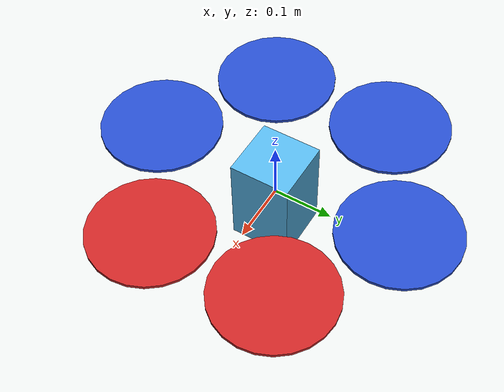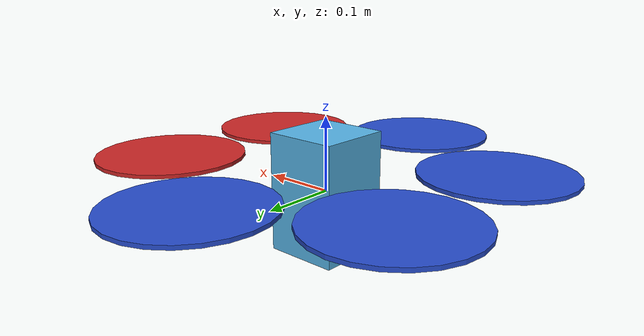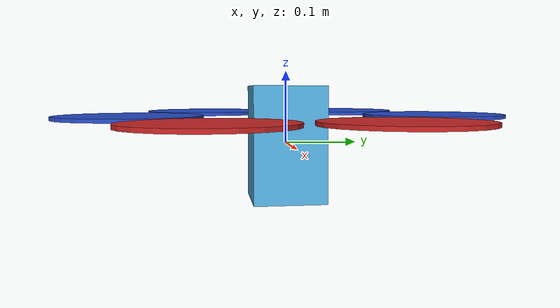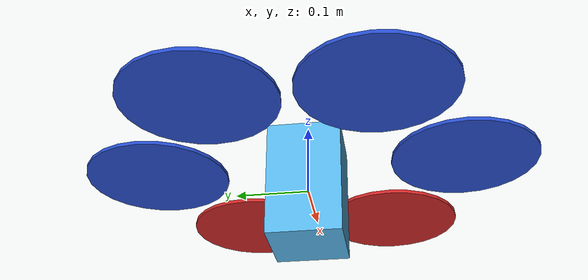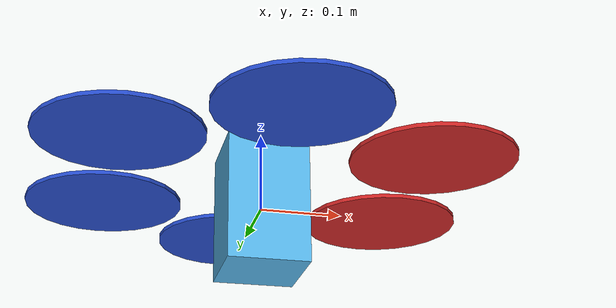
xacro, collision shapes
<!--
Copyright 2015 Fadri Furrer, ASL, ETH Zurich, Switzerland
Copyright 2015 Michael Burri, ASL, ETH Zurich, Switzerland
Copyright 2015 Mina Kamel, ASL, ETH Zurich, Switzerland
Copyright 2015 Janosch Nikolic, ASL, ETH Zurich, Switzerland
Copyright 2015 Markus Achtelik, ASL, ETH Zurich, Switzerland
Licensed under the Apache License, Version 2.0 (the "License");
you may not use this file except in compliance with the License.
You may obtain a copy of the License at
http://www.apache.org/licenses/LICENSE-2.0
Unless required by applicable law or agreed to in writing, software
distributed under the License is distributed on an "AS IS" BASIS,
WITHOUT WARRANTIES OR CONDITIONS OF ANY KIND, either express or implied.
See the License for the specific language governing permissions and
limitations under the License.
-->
<?xml version="1.0"?>

<robot name="firefly" xmlns:xacro="http://ros.org/wiki/xacro">
  <!-- Properties -->
  <xacro:property name="namespace" value="firefly" />
  <xacro:property name="rotor_velocity_slowdown_sim" value="10" />
  <xacro:property name="use_mesh_file" value="true" />
  <xacro:property name="mesh_file" value="package://rotors_description/meshes/firefly.dae" />
  <xacro:property name="mass" value="1.5" /> <!-- [kg] -->
  <xacro:property name="body_width" value="0.1" />
  <xacro:property name="body_height" value="0.16" />
  <xacro:property name="mass_rotor" value="0.005" /> <!-- [kg] -->
  <xacro:property name="arm_length" value="0.215" />
  <xacro:property name="rotor_offset_top" value="0.037" />
  <xacro:property name="radius_rotor" value="0.1" />
  <xacro:property name="motor_constant" value="8.54858e-06" /> <!-- [kg m/s^2] -->
  <xacro:property name="moment_constant" value="0.016" />
  <xacro:property name="time_constant_up" value="0.0125" />
  <xacro:property name="time_constant_down" value="0.025" />
  <xacro:property name="max_rot_velocity" value="838" /> <!-- [rad/s] -->
  <xacro:property name="sin30" value="0.5" />
  <xacro:property name="cos30" value="0.866025403784" />
  <xacro:property name="rotor_drag_coefficient" value="8.06428e-05" />
  <xacro:property name="rolling_moment_coefficient" value="0.000001" />
  <xacro:property name="color" value="White" />

  <!-- Property Blocks -->
  <xacro:property name="body_inertia">
    <inertia ixx="0.0347563" ixy="0.0" ixz="0.0" iyy="0.0458929" iyz="0.0" izz="0.0977" /> <!-- [kg m^2] [kg m^2] [kg m^2] [kg m^2] [kg m^2] [kg m^2] -->
  </xacro:property>

  <!-- inertia of a single rotor, assuming it is a cuboid. Height=3mm, width=15mm -->
  <xacro:property name="rotor_inertia">
    <xacro:box_inertia x="${radius_rotor}" y="0.015" z="0.003" mass="${mass_rotor*rotor_velocity_slowdown_sim}" />
  </xacro:property>

  <!-- Included URDF Files -->
  <xacro:include filename="$(find rotors_description)/urdf/multirotor_base.xacro" />

  <!-- Instantiate multirotor_base_macro once -->
  <xacro:multirotor_base_macro
    robot_namespace="${namespace}"
    mass="${mass}"
    body_width="${body_width}"
    body_height="${body_height}"
    use_mesh_file="${use_mesh_file}"
    mesh_file="${mesh_file}"
    mesh_scale="${mesh_scale}"
    color="${color}"
    >
    <xacro:insert_block name="body_inertia" />
  </xacro:multirotor_base_macro>

  <!-- Instantiate rotors -->
  <xacro:vertical_rotor
    robot_namespace="${namespace}"
    suffix="front_left"
    direction="ccw"
    motor_constant="${motor_constant}"
    moment_constant="${moment_constant}"
    parent="${namespace}/base_link"
    mass_rotor="${mass_rotor}"
    radius_rotor="${radius_rotor}"
    time_constant_up="${time_constant_up}"
    time_constant_down="${time_constant_down}"
    max_rot_velocity="${max_rot_velocity}"
    motor_number="0"
    rotor_drag_coefficient="${rotor_drag_coefficient}"
    rolling_moment_coefficient="${rolling_moment_coefficient}"
    color="Red"
    use_own_mesh="false"
    mesh="">
    <origin xyz="${cos30*arm_length} ${sin30*arm_length} ${rotor_offset_top}" rpy="0 0 0" />
    <xacro:insert_block name="rotor_inertia" />
  </xacro:vertical_rotor>

  <xacro:vertical_rotor
    robot_namespace="${namespace}"
    suffix="left"
    direction="cw"
    motor_constant="${motor_constant}"
    moment_constant="${moment_constant}"
    parent="${namespace}/base_link"
    mass_rotor="${mass_rotor}"
    radius_rotor="${radius_rotor}"
    time_constant_up="${time_constant_up}"
    time_constant_down="${time_constant_down}"
    max_rot_velocity="${max_rot_velocity}"
    motor_number="1"
    rotor_drag_coefficient="${rotor_drag_coefficient}"
    rolling_moment_coefficient="${rolling_moment_coefficient}"
    color="Blue"
    use_own_mesh="false"
    mesh="">
    <origin xyz="0 ${arm_length} ${rotor_offset_top}" rpy="0 0 0" />
    <xacro:insert_block name="rotor_inertia" />
  </xacro:vertical_rotor>

  <xacro:vertical_rotor robot_namespace="${namespace}"
    suffix="back_left"
    direction="ccw"
    motor_constant="${motor_constant}"
    moment_constant="${moment_constant}"
    parent="${namespace}/base_link"
    mass_rotor="${mass_rotor}"
    radius_rotor="${radius_rotor}"
    time_constant_up="${time_constant_up}"
    time_constant_down="${time_constant_down}"
    max_rot_velocity="${max_rot_velocity}"
    motor_number="2"
    rotor_drag_coefficient="${rotor_drag_coefficient}"
    rolling_moment_coefficient="${rolling_moment_coefficient}"
    color="Blue"
    use_own_mesh="false"
    mesh="">
    <origin xyz="-${cos30*arm_length} ${sin30*arm_length} ${rotor_offset_top}" rpy="0 0 0" />
    <xacro:insert_block name="rotor_inertia" />
  </xacro:vertical_rotor>

  <xacro:vertical_rotor robot_namespace="${namespace}"
    suffix="back_right"
    direction="cw"
    motor_constant="${motor_constant}"
    moment_constant="${moment_constant}"
    parent="${namespace}/base_link"
    mass_rotor="${mass_rotor}"
    radius_rotor="${radius_rotor}"
    time_constant_up="${time_constant_up}"
    time_constant_down="${time_constant_down}"
    max_rot_velocity="${max_rot_velocity}"
    motor_number="3"
    rotor_drag_coefficient="${rotor_drag_coefficient}"
    rolling_moment_coefficient="${rolling_moment_coefficient}"
    color="Blue"
    use_own_mesh="false"
    mesh="">
    <origin xyz="-${cos30*arm_length} -${sin30*arm_length} ${rotor_offset_top}" rpy="0 0 0" />
    <xacro:insert_block name="rotor_inertia" />
  </xacro:vertical_rotor>

  <xacro:vertical_rotor
    robot_namespace="${namespace}"
    suffix="right"
    direction="ccw"
    motor_constant="${motor_constant}"
    moment_constant="${moment_constant}"
    parent="${namespace}/base_link"
    mass_rotor="${mass_rotor}"
    radius_rotor="${radius_rotor}"
    time_constant_up="${time_constant_up}"
    time_constant_down="${time_constant_down}"
    max_rot_velocity="${max_rot_velocity}"
    motor_number="4"
    rotor_drag_coefficient="${rotor_drag_coefficient}"
    rolling_moment_coefficient="${rolling_moment_coefficient}"
    color="Blue"
    use_own_mesh="false"
    mesh="">
    <origin xyz="0 -${arm_length} ${rotor_offset_top}" rpy="0 0 0" />
    <xacro:insert_block name="rotor_inertia" />
  </xacro:vertical_rotor>

  <xacro:vertical_rotor
    robot_namespace="${namespace}"
    suffix="front_right"
    direction="cw"
    motor_constant="${motor_constant}"
    moment_constant="${moment_constant}"
    parent="${namespace}/base_link"
    mass_rotor="${mass_rotor}"
    radius_rotor="${radius_rotor}"
    time_constant_up="${time_constant_up}"
    time_constant_down="${time_constant_down}"
    max_rot_velocity="${max_rot_velocity}"
    motor_number="5"
    rotor_drag_coefficient="${rotor_drag_coefficient}"
    rolling_moment_coefficient="${rolling_moment_coefficient}"
    color="Red"
    use_own_mesh="false"
    mesh="">
    <origin xyz="${cos30*arm_length} -${sin30*arm_length} ${rotor_offset_top}" rpy="0 0 0" />
    <xacro:insert_block name="rotor_inertia" />
  </xacro:vertical_rotor>

</robot>

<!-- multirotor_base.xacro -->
<robot xmlns:xacro="http://ros.org/wiki/xacro">
  <!-- Macro for the inertia of a box -->
  <xacro:macro name="box_inertia" params="x y z mass">
    <inertia ixx="${0.0833333 * mass * (y*y + z*z)}" ixy="0.0" ixz="0.0"
      iyy="${0.0833333 * mass * (x*x + z*z)}" iyz="0.0"
      izz="${0.0833333 * mass * (x*x + y*y)}" />
  </xacro:macro>

  <!-- Macro for the inertial properties of a box -->
  <xacro:macro name="box_inertial" params="x y z mass *origin">
    <inertial>
      <mass value="${mass}" />
      <xacro:insert_block name="origin" />
      <xacro:box_inertia x="${x}" y="${y}" z="${z}" mass="${mass}" />
    </inertial>
  </xacro:macro>

  <!-- Main multirotor link -->
  <xacro:macro name="multirotor_base_macro"
    params="robot_namespace mass body_width body_height use_mesh_file mesh_file *inertia">
    <link name="${robot_namespace}/base_link"></link>

    <joint name="${robot_namespace}/base_joint" type="fixed">
      <origin xyz="0 0 0" rpy="0 0 0" />
      <parent link="${robot_namespace}/base_link" />
      <child link="${robot_namespace}/base_link_inertia" />
    </joint>

    <link name="${robot_namespace}/base_link_inertia">
      <inertial>
        <mass value="${mass}" />  <!-- [kg] -->
        <origin xyz="0 0 0" />
        <xacro:insert_block name="inertia" />
      </inertial>

      <visual>
        <origin xyz="0 0 0" rpy="0 0 0" />
        <geometry>
          <xacro:if value="${use_mesh_file}">
            <mesh filename="${mesh_file}" scale="1 1 1" />
          </xacro:if>
          <xacro:unless value="${use_mesh_file}">
            <box size="${body_width} ${body_width} ${body_height}"/>
          </xacro:unless>
        </geometry>
      </visual>

      <collision>
        <origin xyz="0 0 0" rpy="0 0 0" />
        <geometry>
          <box size="${body_width} ${body_width} ${body_height}" />
        </geometry>
      </collision>
    </link>

    <!-- attach multirotor_base_plugin to the base_link -->
    <gazebo>
      <plugin filename="librotors_gazebo_multirotor_base_plugin.so" name="multirotor_base_plugin">
        <robotNamespace>${robot_namespace}</robotNamespace>
        <linkName>${robot_namespace}/base_link</linkName>
        <rotorVelocitySlowdownSim>${rotor_velocity_slowdown_sim}</rotorVelocitySlowdownSim>
      </plugin>
    </gazebo>

    <gazebo reference="base_link">
      <material>Gazebo/${color}</material>
    </gazebo>
  </xacro:macro>

  <!-- Rotor joint and link -->
  <xacro:macro name="vertical_rotor"
    params="robot_namespace suffix direction motor_constant moment_constant parent mass_rotor radius_rotor time_constant_up time_constant_down max_rot_velocity motor_number rotor_drag_coefficient rolling_moment_coefficient color use_own_mesh mesh *origin *inertia">
    <joint name="${robot_namespace}/rotor_${motor_number}_joint" type="continuous">
      <xacro:insert_block name="origin" />
      <axis xyz="0 0 1" />
      <parent link="${parent}" />
      <child link="${robot_namespace}/rotor_${motor_number}" />
    </joint>
    <link name="${robot_namespace}/rotor_${motor_number}">
      <inertial>
        <mass value="${mass_rotor}" /> <!-- [kg] -->
        <xacro:insert_block name="inertia" />
      </inertial>
      <visual>
        <geometry>

          <xacro:if value="${use_own_mesh}">
            <mesh filename="${mesh}"
              scale="1 1 1" />
          </xacro:if>
          <xacro:unless value="${use_own_mesh}">
            <mesh filename="package://rotors_description/meshes/propeller_${direction}.dae"
              scale="${radius_rotor} ${radius_rotor} ${radius_rotor}" /> <!-- The propeller meshes have a radius of 1m -->
          </xacro:unless>
        </geometry>
      </visual>
      <collision>
        <geometry>
          <cylinder length="0.005" radius="${radius_rotor}" />
        </geometry>
      </collision>
    </link>
    <gazebo>
      <plugin name="${robot_namespace}_${suffix}_motor_model" filename="librotors_gazebo_motor_model.so">
        <robotNamespace>${robot_namespace}</robotNamespace>
        <jointName>${robot_namespace}/rotor_${motor_number}_joint</jointName>
        <linkName>${robot_namespace}/rotor_${motor_number}</linkName>
        <turningDirection>${direction}</turningDirection>
        <timeConstantUp>${time_constant_up}</timeConstantUp>
        <timeConstantDown>${time_constant_down}</timeConstantDown>
        <maxRotVelocity>${max_rot_velocity}</maxRotVelocity>
        <motorConstant>${motor_constant}</motorConstant>
        <momentConstant>${moment_constant}</momentConstant>
        <commandSubTopic>gazebo/command/motor_speed</commandSubTopic>
        <motorNumber>${motor_number}</motorNumber>
        <rotorDragCoefficient>${rotor_drag_coefficient}</rotorDragCoefficient>
        <rollingMomentCoefficient>${rolling_moment_coefficient}</rollingMomentCoefficient>
        <motorSpeedPubTopic>motor_speed/${motor_number}</motorSpeedPubTopic>
        <rotorVelocitySlowdownSim>${rotor_velocity_slowdown_sim}</rotorVelocitySlowdownSim>
      </plugin>
    </gazebo>
    <gazebo reference="${robot_namespace}/rotor_${motor_number}">
      <material>Gazebo/${color}</material>
    </gazebo>
  </xacro:macro>
</robot>
